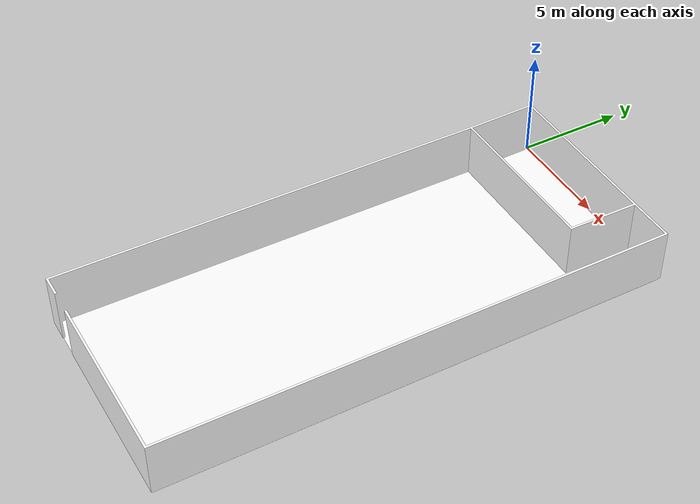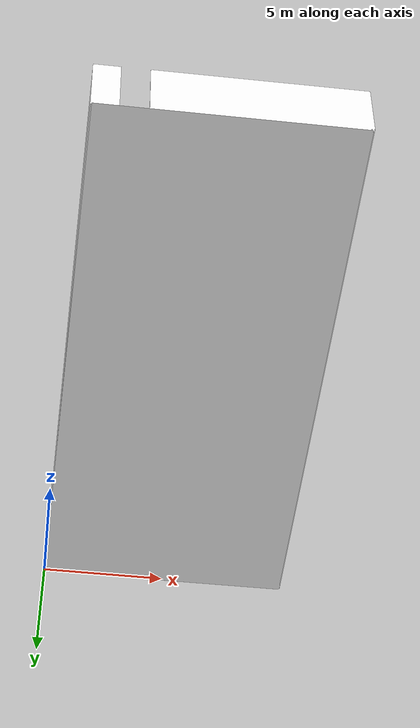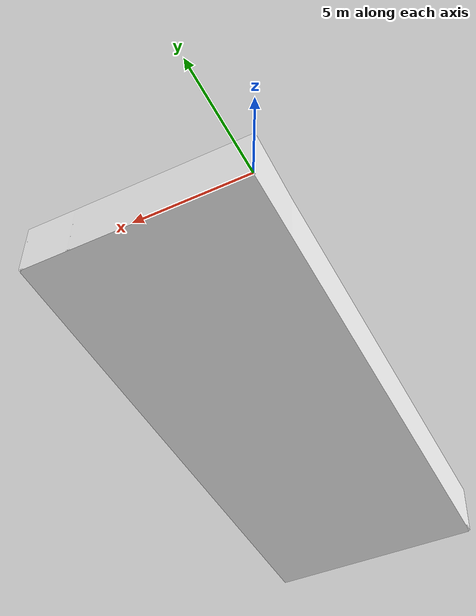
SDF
<?xml version='1.0' encoding='utf-8'?>
<sdf version="1.7">
  <model name="cafe_rmf_cafe_floor0">
    <static>true</static>
    <link name="floor_1">
      <visual name="visual">
        <geometry>
          <mesh>
            <uri>model://cafe_rmf_cafe_floor0/meshes/floor_1.obj</uri>
          </mesh>
        </geometry>
        <material>
          <diffuse>1.0 1.0 1.0</diffuse>
          <specular>0.1 0.1 0.1</specular>
          <pbr>
            <metal>
              <metalness>0.0</metalness>
              <albedo_map>model://cafe_rmf_cafe_floor0/meshes/blue_linoleum.png</albedo_map>
            </metal>
          </pbr>
          <script>
            <uri>model://cafe_rmf_cafe_floor0/meshes/</uri>
            <name>floor_1_Diffuse</name>
          </script>
        </material>
      </visual>
      <collision name="collision">
        <geometry>
          <mesh>
            <uri>model://cafe_rmf_cafe_floor0/meshes/floor_1.obj</uri>
          </mesh>
        </geometry>
        <surface>
          <contact>
            <collide_bitmask>0x01</collide_bitmask>
          </contact>
        </surface>
      </collision>
    </link>
    <link name="wall_1">
      <visual name="wall_1">
        <geometry>
          <mesh>
            <uri>model://cafe_rmf_cafe_floor0/meshes/wall_1.obj</uri>
          </mesh>
        </geometry>
        <transparency>0.0</transparency>
        <material>
          <diffuse>1.0 1.0 1.0</diffuse>
          <specular>0.1 0.1 0.1</specular>
          <pbr>
            <metal>
              <metalness>0.0</metalness>
              <albedo_map>model://cafe_rmf_cafe_floor0/meshes/white_brick.png</albedo_map>
            </metal>
          </pbr>
          <script>
            <uri>model://cafe_rmf_cafe_floor0/meshes/</uri>
            <name>wall_1_Diffuse</name>
          </script>
        </material>
      </visual>
      <collision name="collision">
        <geometry>
          <mesh>
            <uri>model://cafe_rmf_cafe_floor0/meshes/wall_1.obj</uri>
          </mesh>
        </geometry>
        <surface>
          <contact>
            <collide_bitmask>0x01</collide_bitmask>
          </contact>
        </surface>
      </collision>
      <pose>-0.047903047602172864 -23.358898975515686 0 0 0 0</pose>
    </link>
  </model>
</sdf>
